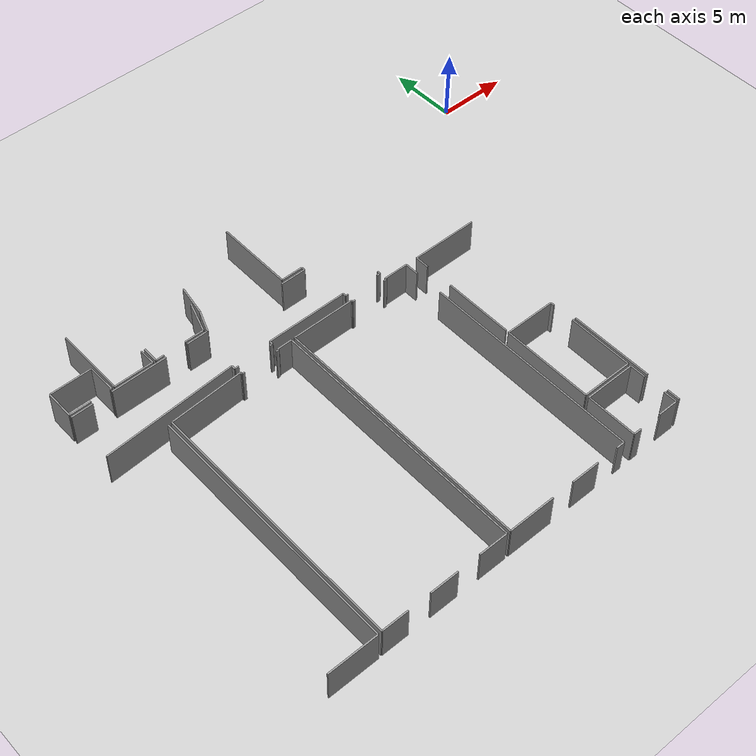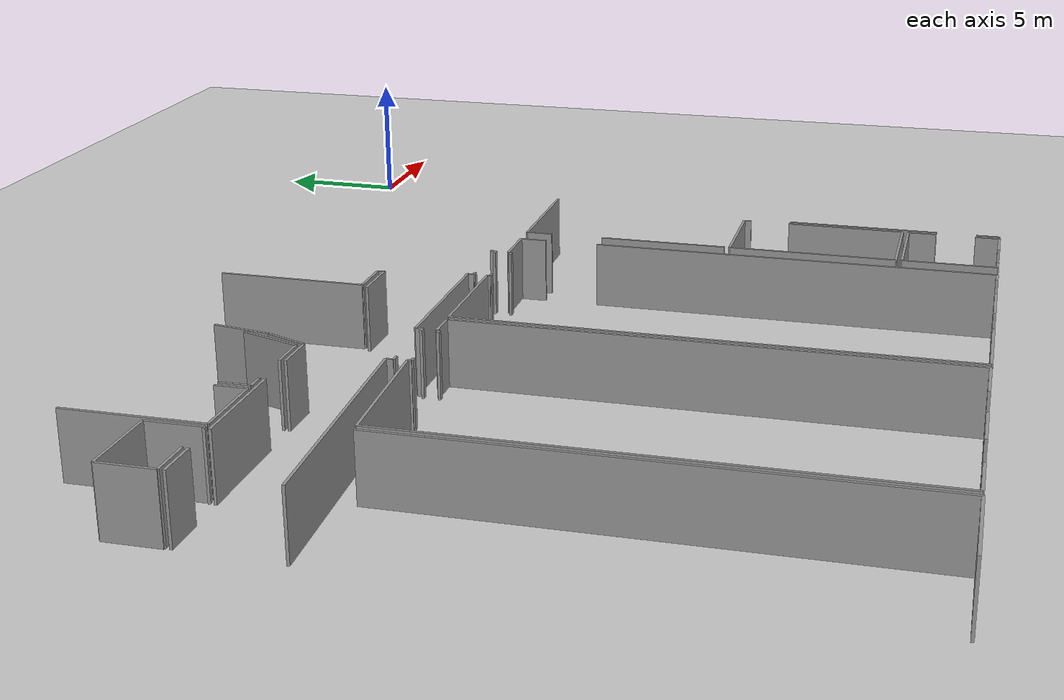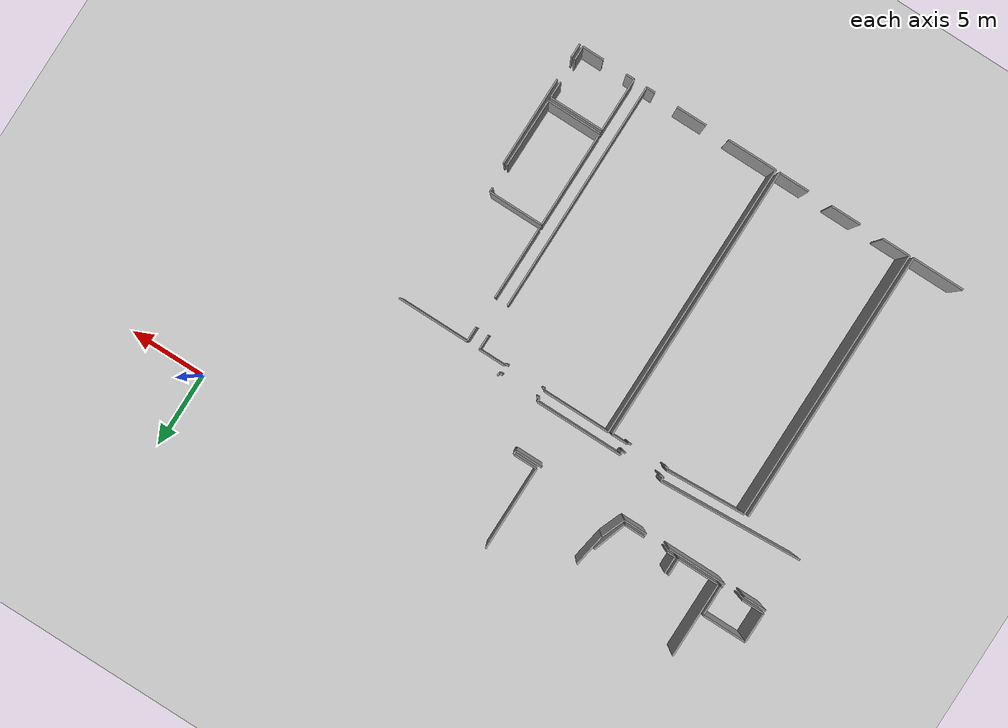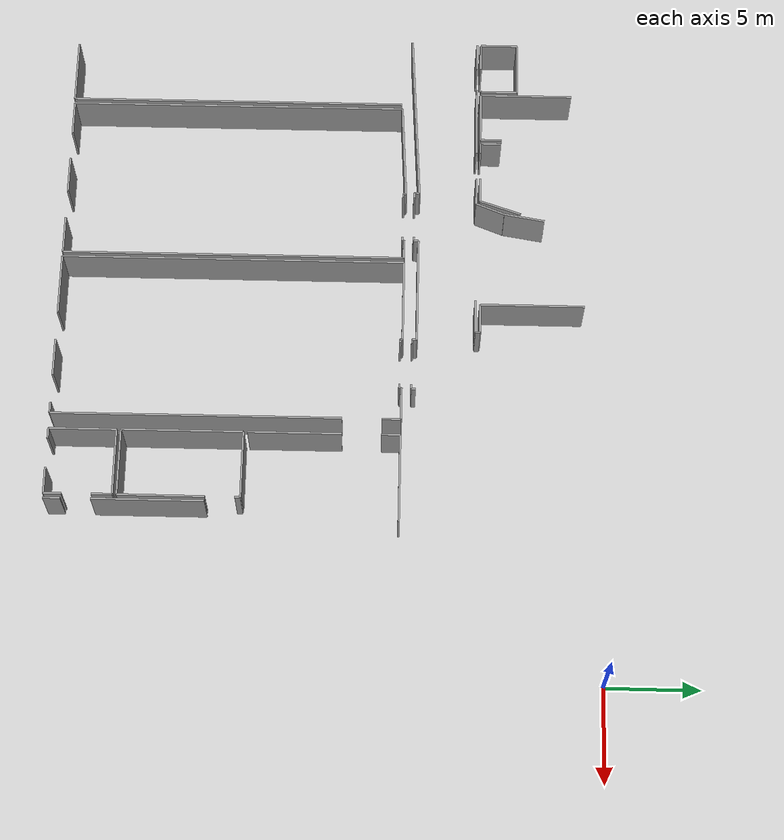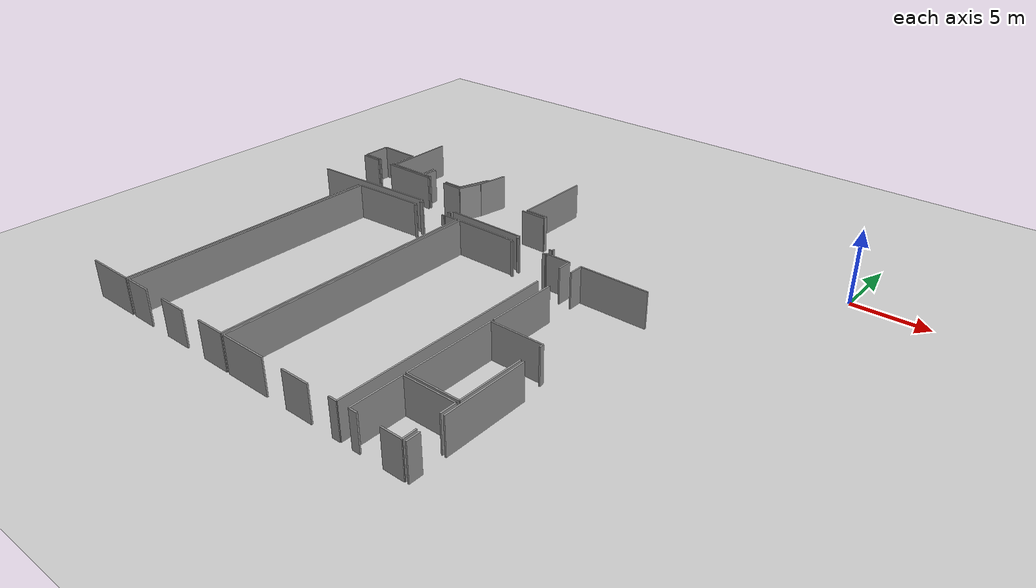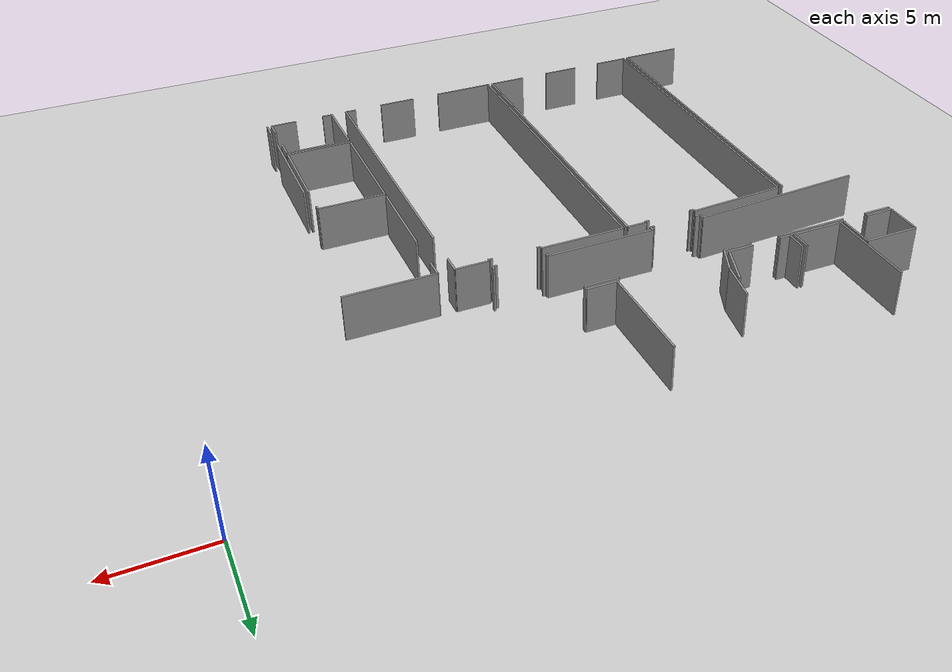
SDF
<sdf version="1.6">
 <world name="default">
  <model name="ground_plane">
   <static>1</static>
   <link name="link">
    <collision name="collision">
     <geometry><plane><normal>0 0 1</normal><size>100 100</size></plane></geometry>
     <surface><friction><ode><mu>100</mu><mu2>50</mu2></ode></friction></surface>
    </collision>
    <visual name="visual">
     <cast_shadows>0</cast_shadows>
     <geometry><plane><normal>0 0 1</normal><size>100 100</size></plane></geometry>
     <material>
      <script><uri>file://media/materials/scripts/gazebo.material</uri><name>Gazebo/Grey</name></script>
     </material>
    </visual>
   </link>
  </model>
  <model name="50041169">
   <static>1</static>
   <link name="Wall_67">
    <collision name="Wall_67_Collision">
     <geometry><box><size>1.64339123518 0.1 2.5</size></box></geometry>
     <pose>0.821695617591 0 1.25 0 0 0</pose>
    </collision>
    <visual name="Wall_67_Visual">
     <pose>0.821695617591 0 1.25 0 0 0</pose>
     <geometry><box><size>1.64339123518 0.1 2.5</size></box></geometry>
     <material>
      <script><uri>file://media/materials/scripts/gazebo.material</uri><name>Gazebo/Grey</name></script>
      <ambient>1 1 1 1</ambient>
     </material>
    </visual>
    <pose>45.3326647455 -35.5952547193 0 0 0 1.19434942848</pose>
   </link>
   <link name="Wall_68">
    <collision name="Wall_68_Collision">
     <geometry><box><size>2.19035003218 0.1 2.5</size></box></geometry>
     <pose>1.09517501609 0 1.25 0 0 0</pose>
    </collision>
    <visual name="Wall_68_Visual">
     <pose>1.09517501609 0 1.25 0 0 0</pose>
     <geometry><box><size>2.19035003218 0.1 2.5</size></box></geometry>
     <material>
      <script><uri>file://media/materials/scripts/gazebo.material</uri><name>Gazebo/Grey</name></script>
      <ambient>1 1 1 1</ambient>
     </material>
    </visual>
    <pose>45.9368057583 -34.0669391797 0 0 0 1.40344664676</pose>
   </link>
   <link name="Wall_109">
    <collision name="Wall_109_Collision">
     <geometry><box><size>0.217079456159 0.1 2.5</size></box></geometry>
     <pose>0.108539728079 0 1.25 0 0 0</pose>
    </collision>
    <visual name="Wall_109_Visual">
     <pose>0.108539728079 0 1.25 0 0 0</pose>
     <geometry><box><size>0.217079456159 0.1 2.5</size></box></geometry>
     <material>
      <script><uri>file://media/materials/scripts/gazebo.material</uri><name>Gazebo/Grey</name></script>
      <ambient>1 1 1 1</ambient>
     </material>
    </visual>
    <pose>56.2456679319 -38.7128203826 0 0 0 -1.57079632679</pose>
   </link>
   <link name="Wall_110">
    <collision name="Wall_110_Collision">
     <geometry><box><size>0.246785065949 0.1 2.5</size></box></geometry>
     <pose>0.123392532974 0 1.25 0 0 0</pose>
    </collision>
    <visual name="Wall_110_Visual">
     <pose>0.123392532974 0 1.25 0 0 0</pose>
     <geometry><box><size>0.246785065949 0.1 2.5</size></box></geometry>
     <material>
      <script><uri>file://media/materials/scripts/gazebo.material</uri><name>Gazebo/Grey</name></script>
      <ambient>1 1 1 1</ambient>
     </material>
    </visual>
    <pose>56.2456679319 -38.9298998388 0 0 0 3.14159265359</pose>
   </link>
   <link name="Wall_111">
    <collision name="Wall_111_Collision">
     <geometry><box><size>0.211112944791 0.1 2.5</size></box></geometry>
     <pose>0.105556472395 0 1.25 0 0 0</pose>
    </collision>
    <visual name="Wall_111_Visual">
     <pose>0.105556472395 0 1.25 0 0 0</pose>
     <geometry><box><size>0.211112944791 0.1 2.5</size></box></geometry>
     <material>
      <script><uri>file://media/materials/scripts/gazebo.material</uri><name>Gazebo/Grey</name></script>
      <ambient>1 1 1 1</ambient>
     </material>
    </visual>
    <pose>53.6352557348 -38.9298998388 0 0 0 3.14159265359</pose>
   </link>
   <link name="Wall_112">
    <collision name="Wall_112_Collision">
     <geometry><box><size>0.236248460767 0.1 2.5</size></box></geometry>
     <pose>0.118124230384 0 1.25 0 0 0</pose>
    </collision>
    <visual name="Wall_112_Visual">
     <pose>0.118124230384 0 1.25 0 0 0</pose>
     <geometry><box><size>0.236248460767 0.1 2.5</size></box></geometry>
     <material>
      <script><uri>file://media/materials/scripts/gazebo.material</uri><name>Gazebo/Grey</name></script>
      <ambient>1 1 1 1</ambient>
     </material>
    </visual>
    <pose>53.42414279 -38.9298998388 0 0 0 1.57079632679</pose>
   </link>
   <link name="Wall_113">
    <collision name="Wall_113_Collision">
     <geometry><box><size>5.79779873815 0.1 2.5</size></box></geometry>
     <pose>2.89889936907 0 1.25 0 0 0</pose>
    </collision>
    <visual name="Wall_113_Visual">
     <pose>2.89889936907 0 1.25 0 0 0</pose>
     <geometry><box><size>5.79779873815 0.1 2.5</size></box></geometry>
     <material>
      <script><uri>file://media/materials/scripts/gazebo.material</uri><name>Gazebo/Grey</name></script>
      <ambient>1 1 1 1</ambient>
     </material>
    </visual>
    <pose>53.42414279 -38.693651378 0 0 0 3.14159265359</pose>
   </link>
   <link name="Wall_114">
    <collision name="Wall_114_Collision">
     <geometry><box><size>0.259225876887 0.1 2.5</size></box></geometry>
     <pose>0.129612938443 0 1.25 0 0 0</pose>
    </collision>
    <visual name="Wall_114_Visual">
     <pose>0.129612938443 0 1.25 0 0 0</pose>
     <geometry><box><size>0.259225876887 0.1 2.5</size></box></geometry>
     <material>
      <script><uri>file://media/materials/scripts/gazebo.material</uri><name>Gazebo/Grey</name></script>
      <ambient>1 1 1 1</ambient>
     </material>
    </visual>
    <pose>47.6263440519 -38.693651378 0 0 0 -1.57079632679</pose>
   </link>
   <link name="Wall_115">
    <collision name="Wall_115_Collision">
     <geometry><box><size>0.22088786767 0.1 2.5</size></box></geometry>
     <pose>0.110443933835 0 1.25 0 0 0</pose>
    </collision>
    <visual name="Wall_115_Visual">
     <pose>0.110443933835 0 1.25 0 0 0</pose>
     <geometry><box><size>0.22088786767 0.1 2.5</size></box></geometry>
     <material>
      <script><uri>file://media/materials/scripts/gazebo.material</uri><name>Gazebo/Grey</name></script>
      <ambient>1 1 1 1</ambient>
     </material>
    </visual>
    <pose>47.6263440519 -38.9528772549 0 0 0 3.14159265359</pose>
   </link>
   <link name="Wall_116">
    <collision name="Wall_116_Collision">
     <geometry><box><size>0.287027280921 0.1 2.5</size></box></geometry>
     <pose>0.143513640461 0 1.25 0 0 0</pose>
    </collision>
    <visual name="Wall_116_Visual">
     <pose>0.143513640461 0 1.25 0 0 0</pose>
     <geometry><box><size>0.287027280921 0.1 2.5</size></box></geometry>
     <material>
      <script><uri>file://media/materials/scripts/gazebo.material</uri><name>Gazebo/Grey</name></script>
      <ambient>1 1 1 1</ambient>
     </material>
    </visual>
    <pose>45.0456374646 -38.9528772549 0 0 0 3.14159265359</pose>
   </link>
   <link name="Wall_117">
    <collision name="Wall_117_Collision">
     <geometry><box><size>0.271666687824 0.1 2.5</size></box></geometry>
     <pose>0.135833343912 0 1.25 0 0 0</pose>
    </collision>
    <visual name="Wall_117_Visual">
     <pose>0.135833343912 0 1.25 0 0 0</pose>
     <geometry><box><size>0.271666687824 0.1 2.5</size></box></geometry>
     <material>
      <script><uri>file://media/materials/scripts/gazebo.material</uri><name>Gazebo/Grey</name></script>
      <ambient>1 1 1 1</ambient>
     </material>
    </visual>
    <pose>44.7586101837 -38.9528772549 0 0 0 1.57079632679</pose>
   </link>
   <link name="Wall_118">
    <collision name="Wall_118_Collision">
     <geometry><box><size>9.41732799606 0.1 2.5</size></box></geometry>
     <pose>4.70866399803 0 1.25 0 0 0</pose>
    </collision>
    <visual name="Wall_118_Visual">
     <pose>4.70866399803 0 1.25 0 0 0</pose>
     <geometry><box><size>9.41732799606 0.1 2.5</size></box></geometry>
     <material>
      <script><uri>file://media/materials/scripts/gazebo.material</uri><name>Gazebo/Grey</name></script>
      <ambient>1 1 1 1</ambient>
     </material>
    </visual>
    <pose>44.7586101837 -38.6812105671 0 0 0 -3.08660635336</pose>
   </link>
   <link name="Wall_132">
    <collision name="Wall_132_Collision">
     <geometry><box><size>1.50965432318 0.1 2.5</size></box></geometry>
     <pose>0.754827161591 0 1.25 0 0 0</pose>
    </collision>
    <visual name="Wall_132_Visual">
     <pose>0.754827161591 0 1.25 0 0 0</pose>
     <geometry><box><size>1.50965432318 0.1 2.5</size></box></geometry>
     <material>
      <script><uri>file://media/materials/scripts/gazebo.material</uri><name>Gazebo/Grey</name></script>
      <ambient>1 1 1 1</ambient>
     </material>
    </visual>
    <pose>35.4436164676 -35.5910654666 0 0 0 0.0</pose>
   </link>
   <link name="Wall_133">
    <collision name="Wall_133_Collision">
     <geometry><box><size>3.91860155129 0.1 2.5</size></box></geometry>
     <pose>1.95930077565 0 1.25 0 0 0</pose>
    </collision>
    <visual name="Wall_133_Visual">
     <pose>1.95930077565 0 1.25 0 0 0</pose>
     <geometry><box><size>3.91860155129 0.1 2.5</size></box></geometry>
     <material>
      <script><uri>file://media/materials/scripts/gazebo.material</uri><name>Gazebo/Grey</name></script>
      <ambient>1 1 1 1</ambient>
     </material>
    </visual>
    <pose>38.3046221421 -35.5910654666 0 0 0 0.0</pose>
   </link>
   <link name="Wall_134">
    <collision name="Wall_134_Collision">
     <geometry><box><size>1.52742691024 0.1 2.5</size></box></geometry>
     <pose>0.763713455118 0 1.25 0 0 0</pose>
    </collision>
    <visual name="Wall_134_Visual">
     <pose>0.763713455118 0 1.25 0 0 0</pose>
     <geometry><box><size>1.52742691024 0.1 2.5</size></box></geometry>
     <material>
      <script><uri>file://media/materials/scripts/gazebo.material</uri><name>Gazebo/Grey</name></script>
      <ambient>1 1 1 1</ambient>
     </material>
    </visual>
    <pose>43.8051108882 -35.5910654666 0 0 0 0.0</pose>
   </link>
   <link name="Wall_135">
    <collision name="Wall_135_Collision">
     <geometry><box><size>1.82295964353 0.1 2.5</size></box></geometry>
     <pose>0.911479821766 0 1.25 0 0 0</pose>
    </collision>
    <visual name="Wall_135_Visual">
     <pose>0.911479821766 0 1.25 0 0 0</pose>
     <geometry><box><size>1.82295964353 0.1 2.5</size></box></geometry>
     <material>
      <script><uri>file://media/materials/scripts/gazebo.material</uri><name>Gazebo/Grey</name></script>
      <ambient>1 1 1 1</ambient>
     </material>
    </visual>
    <pose>51.1119292143 -35.5910654666 0 0 0 0.0</pose>
   </link>
   <link name="Wall_143">
    <collision name="Wall_143_Collision">
     <geometry><box><size>0.104223528366 0.1 2.5</size></box></geometry>
     <pose>0.0521117641832 0 1.25 0 0 0</pose>
    </collision>
    <visual name="Wall_143_Visual">
     <pose>0.0521117641832 0 1.25 0 0 0</pose>
     <geometry><box><size>0.104223528366 0.1 2.5</size></box></geometry>
     <material>
      <script><uri>file://media/materials/scripts/gazebo.material</uri><name>Gazebo/Grey</name></script>
      <ambient>1 1 1 1</ambient>
     </material>
    </visual>
    <pose>38.425348787 -35.3798255748 0 0 0 3.14159265359</pose>
   </link>
   <link name="Wall_144">
    <collision name="Wall_144_Collision">
     <geometry><box><size>1.50838485268 0.1 2.5</size></box></geometry>
     <pose>0.754192426339 0 1.25 0 0 0</pose>
    </collision>
    <visual name="Wall_144_Visual">
     <pose>0.754192426339 0 1.25 0 0 0</pose>
     <geometry><box><size>1.50838485268 0.1 2.5</size></box></geometry>
     <material>
      <script><uri>file://media/materials/scripts/gazebo.material</uri><name>Gazebo/Grey</name></script>
      <ambient>1 1 1 1</ambient>
     </material>
    </visual>
    <pose>36.9775176774 -35.3798255748 0 0 0 3.14159265359</pose>
   </link>
   <link name="Wall_145">
    <collision name="Wall_145_Collision">
     <geometry><box><size>2.00030467292 0.1 2.5</size></box></geometry>
     <pose>1.00015233646 0 1.25 0 0 0</pose>
    </collision>
    <visual name="Wall_145_Visual">
     <pose>1.00015233646 0 1.25 0 0 0</pose>
     <geometry><box><size>2.00030467292 0.1 2.5</size></box></geometry>
     <material>
      <script><uri>file://media/materials/scripts/gazebo.material</uri><name>Gazebo/Grey</name></script>
      <ambient>1 1 1 1</ambient>
     </material>
    </visual>
    <pose>35.4691328247 -35.3798255748 0 0 0 1.57079632679</pose>
   </link>
   <link name="Wall_146">
    <collision name="Wall_146_Collision">
     <geometry><box><size>2.93844337527 0.1 2.5</size></box></geometry>
     <pose>1.46922168763 0 1.25 0 0 0</pose>
    </collision>
    <visual name="Wall_146_Visual">
     <pose>1.46922168763 0 1.25 0 0 0</pose>
     <geometry><box><size>2.93844337527 0.1 2.5</size></box></geometry>
     <material>
      <script><uri>file://media/materials/scripts/gazebo.material</uri><name>Gazebo/Grey</name></script>
      <ambient>1 1 1 1</ambient>
     </material>
    </visual>
    <pose>35.4691328247 -33.3795209018 0 0 0 0.0</pose>
   </link>
   <link name="Wall_147">
    <collision name="Wall_147_Collision">
     <geometry><box><size>2.00038362555 0.1 2.5</size></box></geometry>
     <pose>1.00019181277 0 1.25 0 0 0</pose>
    </collision>
    <visual name="Wall_147_Visual">
     <pose>1.00019181277 0 1.25 0 0 0</pose>
     <geometry><box><size>2.00038362555 0.1 2.5</size></box></geometry>
     <material>
      <script><uri>file://media/materials/scripts/gazebo.material</uri><name>Gazebo/Grey</name></script>
      <ambient>1 1 1 1</ambient>
     </material>
    </visual>
    <pose>38.4075762 -33.3795209018 0 0 0 -1.56191162056</pose>
   </link>
   <link name="Wall_148">
    <collision name="Wall_148_Collision">
     <geometry><box><size>1.37915275539 0.1 2.5</size></box></geometry>
     <pose>0.689576377693 0 1.25 0 0 0</pose>
    </collision>
    <visual name="Wall_148_Visual">
     <pose>0.689576377693 0 1.25 0 0 0</pose>
     <geometry><box><size>1.37915275539 0.1 2.5</size></box></geometry>
     <material>
      <script><uri>file://media/materials/scripts/gazebo.material</uri><name>Gazebo/Grey</name></script>
      <ambient>1 1 1 1</ambient>
     </material>
    </visual>
    <pose>45.1769007147 -35.3805872571 0 0 0 3.14159265359</pose>
   </link>
   <link name="Wall_149">
    <collision name="Wall_149_Collision">
     <geometry><box><size>0.592461884148 0.1 2.5</size></box></geometry>
     <pose>0.296230942074 0 1.25 0 0 0</pose>
    </collision>
    <visual name="Wall_149_Visual">
     <pose>0.296230942074 0 1.25 0 0 0</pose>
     <geometry><box><size>0.592461884148 0.1 2.5</size></box></geometry>
     <material>
      <script><uri>file://media/materials/scripts/gazebo.material</uri><name>Gazebo/Grey</name></script>
      <ambient>1 1 1 1</ambient>
     </material>
    </visual>
    <pose>42.2417579628 -35.3805872571 0 0 0 3.14159265359</pose>
   </link>
   <link name="Wall_150">
    <collision name="Wall_150_Collision">
     <geometry><box><size>1.12500476051 0.1 2.5</size></box></geometry>
     <pose>0.562502380257 0 1.25 0 0 0</pose>
    </collision>
    <visual name="Wall_150_Visual">
     <pose>0.562502380257 0 1.25 0 0 0</pose>
     <geometry><box><size>1.12500476051 0.1 2.5</size></box></geometry>
     <material>
      <script><uri>file://media/materials/scripts/gazebo.material</uri><name>Gazebo/Grey</name></script>
      <ambient>1 1 1 1</ambient>
     </material>
    </visual>
    <pose>41.6492960786 -35.3805872571 0 0 0 1.57079632679</pose>
   </link>
   <link name="Wall_155">
    <collision name="Wall_155_Collision">
     <geometry><box><size>2.31127269089 0.1 2.5</size></box></geometry>
     <pose>1.15563634545 0 1.25 0 0 0</pose>
    </collision>
    <visual name="Wall_155_Visual">
     <pose>1.15563634545 0 1.25 0 0 0</pose>
     <geometry><box><size>2.31127269089 0.1 2.5</size></box></geometry>
     <material>
      <script><uri>file://media/materials/scripts/gazebo.material</uri><name>Gazebo/Grey</name></script>
      <ambient>1 1 1 1</ambient>
     </material>
    </visual>
    <pose>45.9147169716 -33.1902428497 0 0 0 -1.89570801979</pose>
   </link>
   <link name="Wall_156">
    <collision name="Wall_156_Collision">
     <geometry><box><size>2.78179071509 0.1 2.5</size></box></geometry>
     <pose>1.39089535755 0 1.25 0 0 0</pose>
    </collision>
    <visual name="Wall_156_Visual">
     <pose>1.39089535755 0 1.25 0 0 0</pose>
     <geometry><box><size>2.78179071509 0.1 2.5</size></box></geometry>
     <material>
      <script><uri>file://media/materials/scripts/gazebo.material</uri><name>Gazebo/Grey</name></script>
      <ambient>1 1 1 1</ambient>
     </material>
    </visual>
    <pose>41.4138093001 -35.3805872571 0 0 0 3.14159265359</pose>
   </link>
   <link name="Wall_157">
    <collision name="Wall_157_Collision">
     <geometry><box><size>4.98965381539 0.1 2.5</size></box></geometry>
     <pose>2.4948269077 0 1.25 0 0 0</pose>
    </collision>
    <visual name="Wall_157_Visual">
     <pose>2.4948269077 0 1.25 0 0 0</pose>
     <geometry><box><size>4.98965381539 0.1 2.5</size></box></geometry>
     <material>
      <script><uri>file://media/materials/scripts/gazebo.material</uri><name>Gazebo/Grey</name></script>
      <ambient>1 1 1 1</ambient>
     </material>
    </visual>
    <pose>38.632018585 -35.3805872571 0 0 0 1.57079632679</pose>
   </link>
   <link name="Wall_160">
    <collision name="Wall_160_Collision">
     <geometry><box><size>1.14420351905 0.1 2.5</size></box></geometry>
     <pose>0.572101759526 0 1.25 0 0 0</pose>
    </collision>
    <visual name="Wall_160_Visual">
     <pose>0.572101759526 0 1.25 0 0 0</pose>
     <geometry><box><size>1.14420351905 0.1 2.5</size></box></geometry>
     <material>
      <script><uri>file://media/materials/scripts/gazebo.material</uri><name>Gazebo/Grey</name></script>
      <ambient>1 1 1 1</ambient>
     </material>
    </visual>
    <pose>41.4055577419 -34.2364134919 0 0 0 -1.56358464665</pose>
   </link>
   <link name="Wall_177">
    <collision name="Wall_177_Collision">
     <geometry><box><size>3.46565447552 0.1 2.5</size></box></geometry>
     <pose>1.73282723776 0 1.25 0 0 0</pose>
    </collision>
    <visual name="Wall_177_Visual">
     <pose>1.73282723776 0 1.25 0 0 0</pose>
     <geometry><box><size>3.46565447552 0.1 2.5</size></box></geometry>
     <material>
      <script><uri>file://media/materials/scripts/gazebo.material</uri><name>Gazebo/Grey</name></script>
      <ambient>1 1 1 1</ambient>
     </material>
    </visual>
    <pose>39.3064882637 -57.7982938316 0 0 0 3.14159265359</pose>
   </link>
   <link name="Wall_183">
    <collision name="Wall_183_Collision">
     <geometry><box><size>18.0819580857 0.1 2.5</size></box></geometry>
     <pose>9.04097904284 0 1.25 0 0 0</pose>
    </collision>
    <visual name="Wall_183_Visual">
     <pose>9.04097904284 0 1.25 0 0 0</pose>
     <geometry><box><size>18.0819580857 0.1 2.5</size></box></geometry>
     <material>
      <script><uri>file://media/materials/scripts/gazebo.material</uri><name>Gazebo/Grey</name></script>
      <ambient>1 1 1 1</ambient>
     </material>
    </visual>
    <pose>39.3002678583 -39.7163368159 0 0 0 -1.57045231507</pose>
   </link>
   <link name="Wall_184">
    <collision name="Wall_184_Collision">
     <geometry><box><size>2.05425716933 0.1 2.5</size></box></geometry>
     <pose>1.02712858467 0 1.25 0 0 0</pose>
    </collision>
    <visual name="Wall_184_Visual">
     <pose>1.02712858467 0 1.25 0 0 0</pose>
     <geometry><box><size>2.05425716933 0.1 2.5</size></box></geometry>
     <material>
      <script><uri>file://media/materials/scripts/gazebo.material</uri><name>Gazebo/Grey</name></script>
      <ambient>1 1 1 1</ambient>
     </material>
    </visual>
    <pose>48.68216267 -57.776458939 0 0 0 3.14159265359</pose>
   </link>
   <link name="Wall_185">
    <collision name="Wall_185_Collision">
     <geometry><box><size>2.01338021911 0.1 2.5</size></box></geometry>
     <pose>1.00669010956 0 1.25 0 0 0</pose>
    </collision>
    <visual name="Wall_185_Visual">
     <pose>1.00669010956 0 1.25 0 0 0</pose>
     <geometry><box><size>2.01338021911 0.1 2.5</size></box></geometry>
     <material>
      <script><uri>file://media/materials/scripts/gazebo.material</uri><name>Gazebo/Grey</name></script>
      <ambient>1 1 1 1</ambient>
     </material>
    </visual>
    <pose>45.0373859063 -57.776458939 0 0 0 3.14159265359</pose>
   </link>
   <link name="Wall_186">
    <collision name="Wall_186_Collision">
     <geometry><box><size>1.86827974052 0.1 2.5</size></box></geometry>
     <pose>0.93413987026 0 1.25 0 0 0</pose>
    </collision>
    <visual name="Wall_186_Visual">
     <pose>0.93413987026 0 1.25 0 0 0</pose>
     <geometry><box><size>1.86827974052 0.1 2.5</size></box></geometry>
     <material>
      <script><uri>file://media/materials/scripts/gazebo.material</uri><name>Gazebo/Grey</name></script>
      <ambient>1 1 1 1</ambient>
     </material>
    </visual>
    <pose>41.446180798 -57.776458939 0 0 0 3.14159265359</pose>
   </link>
   <link name="Wall_187">
    <collision name="Wall_187_Collision">
     <geometry><box><size>18.0844959567 0.1 2.5</size></box></geometry>
     <pose>9.04224797837 0 1.25 0 0 0</pose>
    </collision>
    <visual name="Wall_187_Visual">
     <pose>9.04224797837 0 1.25 0 0 0</pose>
     <geometry><box><size>18.0844959567 0.1 2.5</size></box></geometry>
     <material>
      <script><uri>file://media/materials/scripts/gazebo.material</uri><name>Gazebo/Grey</name></script>
      <ambient>1 1 1 1</ambient>
     </material>
    </visual>
    <pose>39.5779010575 -57.776458939 0 0 0 1.57079632679</pose>
   </link>
   <link name="Wall_188">
    <collision name="Wall_188_Collision">
     <geometry><box><size>5.25294267283 0.1 2.5</size></box></geometry>
     <pose>2.62647133642 0 1.25 0 0 0</pose>
    </collision>
    <visual name="Wall_188_Visual">
     <pose>2.62647133642 0 1.25 0 0 0</pose>
     <geometry><box><size>5.25294267283 0.1 2.5</size></box></geometry>
     <material>
      <script><uri>file://media/materials/scripts/gazebo.material</uri><name>Gazebo/Grey</name></script>
      <ambient>1 1 1 1</ambient>
     </material>
    </visual>
    <pose>39.5779010575 -39.6919629822 0 0 0 0.0534099496427</pose>
   </link>
   <link name="Wall_189">
    <collision name="Wall_189_Collision">
     <geometry><box><size>0.14179985528 0.1 2.5</size></box></geometry>
     <pose>0.0708999276402 0 1.25 0 0 0</pose>
    </collision>
    <visual name="Wall_189_Visual">
     <pose>0.0708999276402 0 1.25 0 0 0</pose>
     <geometry><box><size>0.14179985528 0.1 2.5</size></box></geometry>
     <material>
      <script><uri>file://media/materials/scripts/gazebo.material</uri><name>Gazebo/Grey</name></script>
      <ambient>1 1 1 1</ambient>
     </material>
    </visual>
    <pose>44.8233531794 -39.4115369479 0 0 0 -1.57079632679</pose>
   </link>
   <link name="Wall_190">
    <collision name="Wall_190_Collision">
     <geometry><box><size>0.200322445508 0.1 2.5</size></box></geometry>
     <pose>0.100161222754 0 1.25 0 0 0</pose>
    </collision>
    <visual name="Wall_190_Visual">
     <pose>0.100161222754 0 1.25 0 0 0</pose>
     <geometry><box><size>0.200322445508 0.1 2.5</size></box></geometry>
     <material>
      <script><uri>file://media/materials/scripts/gazebo.material</uri><name>Gazebo/Grey</name></script>
      <ambient>1 1 1 1</ambient>
     </material>
    </visual>
    <pose>44.8233531794 -39.5533368032 0 0 0 0.0</pose>
   </link>
   <link name="Wall_191">
    <collision name="Wall_191_Collision">
     <geometry><box><size>0.205273380473 0.1 2.5</size></box></geometry>
     <pose>0.102636690237 0 1.25 0 0 0</pose>
    </collision>
    <visual name="Wall_191_Visual">
     <pose>0.102636690237 0 1.25 0 0 0</pose>
     <geometry><box><size>0.205273380473 0.1 2.5</size></box></geometry>
     <material>
      <script><uri>file://media/materials/scripts/gazebo.material</uri><name>Gazebo/Grey</name></script>
      <ambient>1 1 1 1</ambient>
     </material>
    </visual>
    <pose>47.4036789255 -39.5513056504 0 0 0 0.0</pose>
   </link>
   <link name="Wall_192">
    <collision name="Wall_192_Collision">
     <geometry><box><size>0.0906401939751 0.1 2.5</size></box></geometry>
     <pose>0.0453200969875 0 1.25 0 0 0</pose>
    </collision>
    <visual name="Wall_192_Visual">
     <pose>0.0453200969875 0 1.25 0 0 0</pose>
     <geometry><box><size>0.0906401939751 0.1 2.5</size></box></geometry>
     <material>
      <script><uri>file://media/materials/scripts/gazebo.material</uri><name>Gazebo/Grey</name></script>
      <ambient>1 1 1 1</ambient>
     </material>
    </visual>
    <pose>47.608952306 -39.5513056504 0 0 0 1.57079632679</pose>
   </link>
   <link name="Wall_193">
    <collision name="Wall_193_Collision">
     <geometry><box><size>1.06419712338 0.1 2.5</size></box></geometry>
     <pose>0.53209856169 0 1.25 0 0 0</pose>
    </collision>
    <visual name="Wall_193_Visual">
     <pose>0.53209856169 0 1.25 0 0 0</pose>
     <geometry><box><size>1.06419712338 0.1 2.5</size></box></geometry>
     <material>
      <script><uri>file://media/materials/scripts/gazebo.material</uri><name>Gazebo/Grey</name></script>
      <ambient>1 1 1 1</ambient>
     </material>
    </visual>
    <pose>47.608952306 -39.4606654564 0 0 0 0.0</pose>
   </link>
   <link name="Wall_194">
    <collision name="Wall_194_Collision">
     <geometry><box><size>18.3157957003 0.1 2.5</size></box></geometry>
     <pose>9.15789785013 0 1.25 0 0 0</pose>
    </collision>
    <visual name="Wall_194_Visual">
     <pose>9.15789785013 0 1.25 0 0 0</pose>
     <geometry><box><size>18.3157957003 0.1 2.5</size></box></geometry>
     <material>
      <script><uri>file://media/materials/scripts/gazebo.material</uri><name>Gazebo/Grey</name></script>
      <ambient>1 1 1 1</ambient>
     </material>
    </visual>
    <pose>48.6731494294 -39.4606654564 0 0 0 -1.57030422473</pose>
   </link>
   <link name="Wall_195">
    <collision name="Wall_195_Collision">
     <geometry><box><size>0.588145684435 0.1 2.5</size></box></geometry>
     <pose>0.294072842218 0 1.25 0 0 0</pose>
    </collision>
    <visual name="Wall_195_Visual">
     <pose>0.294072842218 0 1.25 0 0 0</pose>
     <geometry><box><size>0.588145684435 0.1 2.5</size></box></geometry>
     <material>
      <script><uri>file://media/materials/scripts/gazebo.material</uri><name>Gazebo/Grey</name></script>
      <ambient>1 1 1 1</ambient>
     </material>
    </visual>
    <pose>57.9948713392 -57.7868685971 0 0 0 3.14159265359</pose>
   </link>
   <link name="Wall_196">
    <collision name="Wall_196_Collision">
     <geometry><box><size>2.02353598314 0.1 2.5</size></box></geometry>
     <pose>1.01176799157 0 1.25 0 0 0</pose>
    </collision>
    <visual name="Wall_196_Visual">
     <pose>1.01176799157 0 1.25 0 0 0</pose>
     <geometry><box><size>2.02353598314 0.1 2.5</size></box></geometry>
     <material>
      <script><uri>file://media/materials/scripts/gazebo.material</uri><name>Gazebo/Grey</name></script>
      <ambient>1 1 1 1</ambient>
     </material>
    </visual>
    <pose>55.8461655643 -57.7868685971 0 0 0 3.14159265359</pose>
   </link>
   <link name="Wall_197">
    <collision name="Wall_197_Collision">
     <geometry><box><size>3.31204854455 0.1 2.5</size></box></geometry>
     <pose>1.65602427228 0 1.25 0 0 0</pose>
    </collision>
    <visual name="Wall_197_Visual">
     <pose>1.65602427228 0 1.25 0 0 0</pose>
     <geometry><box><size>3.31204854455 0.1 2.5</size></box></geometry>
     <material>
      <script><uri>file://media/materials/scripts/gazebo.material</uri><name>Gazebo/Grey</name></script>
      <ambient>1 1 1 1</ambient>
     </material>
    </visual>
    <pose>52.2477244741 -57.7868685971 0 0 0 3.14159265359</pose>
   </link>
   <link name="Wall_198">
    <collision name="Wall_198_Collision">
     <geometry><box><size>18.3416906808 0.1 2.5</size></box></geometry>
     <pose>9.17084534041 0 1.25 0 0 0</pose>
    </collision>
    <visual name="Wall_198_Visual">
     <pose>9.17084534041 0 1.25 0 0 0</pose>
     <geometry><box><size>18.3416906808 0.1 2.5</size></box></geometry>
     <material>
      <script><uri>file://media/materials/scripts/gazebo.material</uri><name>Gazebo/Grey</name></script>
      <ambient>1 1 1 1</ambient>
     </material>
    </visual>
    <pose>48.9356759296 -57.7868685971 0 0 0 1.57079632679</pose>
   </link>
   <link name="Wall_199">
    <collision name="Wall_199_Collision">
     <geometry><box><size>4.50039988321 0.1 2.5</size></box></geometry>
     <pose>2.2501999416 0 1.25 0 0 0</pose>
    </collision>
    <visual name="Wall_199_Visual">
     <pose>2.2501999416 0 1.25 0 0 0</pose>
     <geometry><box><size>4.50039988321 0.1 2.5</size></box></geometry>
     <material>
      <script><uri>file://media/materials/scripts/gazebo.material</uri><name>Gazebo/Grey</name></script>
      <ambient>1 1 1 1</ambient>
     </material>
    </visual>
    <pose>48.9356759296 -39.4451779163 0 0 0 0.0</pose>
   </link>
   <link name="Wall_200">
    <collision name="Wall_200_Collision">
     <geometry><box><size>0.120472750816 0.1 2.5</size></box></geometry>
     <pose>0.0602363754078 0 1.25 0 0 0</pose>
    </collision>
    <visual name="Wall_200_Visual">
     <pose>0.0602363754078 0 1.25 0 0 0</pose>
     <geometry><box><size>0.120472750816 0.1 2.5</size></box></geometry>
     <material>
      <script><uri>file://media/materials/scripts/gazebo.material</uri><name>Gazebo/Grey</name></script>
      <ambient>1 1 1 1</ambient>
     </material>
    </visual>
    <pose>53.4360758128 -39.4451779163 0 0 0 -1.57079632679</pose>
   </link>
   <link name="Wall_201">
    <collision name="Wall_201_Collision">
     <geometry><box><size>0.190801416729 0.1 2.5</size></box></geometry>
     <pose>0.0954007083645 0 1.25 0 0 0</pose>
    </collision>
    <visual name="Wall_201_Visual">
     <pose>0.0954007083645 0 1.25 0 0 0</pose>
     <geometry><box><size>0.190801416729 0.1 2.5</size></box></geometry>
     <material>
      <script><uri>file://media/materials/scripts/gazebo.material</uri><name>Gazebo/Grey</name></script>
      <ambient>1 1 1 1</ambient>
     </material>
    </visual>
    <pose>53.4360758128 -39.5656506671 0 0 0 0.0</pose>
   </link>
   <link name="Wall_202">
    <collision name="Wall_202_Collision">
     <geometry><box><size>0.212890203496 0.1 2.5</size></box></geometry>
     <pose>0.106445101748 0 1.25 0 0 0</pose>
    </collision>
    <visual name="Wall_202_Visual">
     <pose>0.106445101748 0 1.25 0 0 0</pose>
     <geometry><box><size>0.212890203496 0.1 2.5</size></box></geometry>
     <material>
      <script><uri>file://media/materials/scripts/gazebo.material</uri><name>Gazebo/Grey</name></script>
      <ambient>1 1 1 1</ambient>
     </material>
    </visual>
    <pose>55.9924085664 -39.5656506671 0 0 0 0.0</pose>
   </link>
   <link name="Wall_203">
    <collision name="Wall_203_Collision">
     <geometry><box><size>0.11526792175 0.1 2.5</size></box></geometry>
     <pose>0.0576339608749 0 1.25 0 0 0</pose>
    </collision>
    <visual name="Wall_203_Visual">
     <pose>0.0576339608749 0 1.25 0 0 0</pose>
     <geometry><box><size>0.11526792175 0.1 2.5</size></box></geometry>
     <material>
      <script><uri>file://media/materials/scripts/gazebo.material</uri><name>Gazebo/Grey</name></script>
      <ambient>1 1 1 1</ambient>
     </material>
    </visual>
    <pose>56.2052987699 -39.5656506671 0 0 0 1.57079632679</pose>
   </link>
   <link name="Wall_204">
    <collision name="Wall_204_Collision">
     <geometry><box><size>1.76824546482 0.1 2.5</size></box></geometry>
     <pose>0.884122732408 0 1.25 0 0 0</pose>
    </collision>
    <visual name="Wall_204_Visual">
     <pose>0.884122732408 0 1.25 0 0 0</pose>
     <geometry><box><size>1.76824546482 0.1 2.5</size></box></geometry>
     <material>
      <script><uri>file://media/materials/scripts/gazebo.material</uri><name>Gazebo/Grey</name></script>
      <ambient>1 1 1 1</ambient>
     </material>
    </visual>
    <pose>56.2052987699 -39.4503827454 0 0 0 0.0</pose>
   </link>
   <link name="Wall_205">
    <collision name="Wall_205_Collision">
     <geometry><box><size>1.00770568596 0.1 2.5</size></box></geometry>
     <pose>0.503852842979 0 1.25 0 0 0</pose>
    </collision>
    <visual name="Wall_205_Visual">
     <pose>0.503852842979 0 1.25 0 0 0</pose>
     <geometry><box><size>1.00770568596 0.1 2.5</size></box></geometry>
     <material>
      <script><uri>file://media/materials/scripts/gazebo.material</uri><name>Gazebo/Grey</name></script>
      <ambient>1 1 1 1</ambient>
     </material>
    </visual>
    <pose>57.9735442347 -39.4503827454 0 0 0 -1.57079632679</pose>
   </link>
   <link name="Wall_206">
    <collision name="Wall_206_Collision">
     <geometry><box><size>15.2703486369 0.1 2.5</size></box></geometry>
     <pose>7.63517431845 0 1.25 0 0 0</pose>
    </collision>
    <visual name="Wall_206_Visual">
     <pose>7.63517431845 0 1.25 0 0 0</pose>
     <geometry><box><size>15.2703486369 0.1 2.5</size></box></geometry>
     <material>
      <script><uri>file://media/materials/scripts/gazebo.material</uri><name>Gazebo/Grey</name></script>
      <ambient>1 1 1 1</ambient>
     </material>
    </visual>
    <pose>57.9735442347 -42.5165348533 0 0 0 -1.56939969127</pose>
   </link>
   <link name="Wall_237">
    <collision name="Wall_237_Collision">
     <geometry><box><size>0.255544412426 0.1 2.5</size></box></geometry>
     <pose>0.127772206213 0 1.25 0 0 0</pose>
    </collision>
    <visual name="Wall_237_Visual">
     <pose>0.127772206213 0 1.25 0 0 0</pose>
     <geometry><box><size>0.255544412426 0.1 2.5</size></box></geometry>
     <material>
      <script><uri>file://media/materials/scripts/gazebo.material</uri><name>Gazebo/Grey</name></script>
      <ambient>1 1 1 1</ambient>
     </material>
    </visual>
    <pose>52.9359044343 -35.5969050309 0 0 0 1.57079632679</pose>
   </link>
   <link name="Wall_238">
    <collision name="Wall_238_Collision">
     <geometry><box><size>1.60207177586 0.1 2.5</size></box></geometry>
     <pose>0.801035887931 0 1.25 0 0 0</pose>
    </collision>
    <visual name="Wall_238_Visual">
     <pose>0.801035887931 0 1.25 0 0 0</pose>
     <geometry><box><size>1.60207177586 0.1 2.5</size></box></geometry>
     <material>
      <script><uri>file://media/materials/scripts/gazebo.material</uri><name>Gazebo/Grey</name></script>
      <ambient>1 1 1 1</ambient>
     </material>
    </visual>
    <pose>52.9359044343 -35.3413606185 0 0 0 3.14159265359</pose>
   </link>
   <link name="Wall_239">
    <collision name="Wall_239_Collision">
     <geometry><box><size>5.54593579018 0.1 2.5</size></box></geometry>
     <pose>2.77296789509 0 1.25 0 0 0</pose>
    </collision>
    <visual name="Wall_239_Visual">
     <pose>2.77296789509 0 1.25 0 0 0</pose>
     <geometry><box><size>5.54593579018 0.1 2.5</size></box></geometry>
     <material>
      <script><uri>file://media/materials/scripts/gazebo.material</uri><name>Gazebo/Grey</name></script>
      <ambient>1 1 1 1</ambient>
     </material>
    </visual>
    <pose>51.3338326584 -35.3413606185 0 0 0 1.57079632679</pose>
   </link>
   <link name="Wall_360">
    <collision name="Wall_360_Collision">
     <geometry><box><size>0.908306145507 0.1 2.5</size></box></geometry>
     <pose>0.454153072753 0 1.25 0 0 0</pose>
    </collision>
    <visual name="Wall_360_Visual">
     <pose>0.454153072753 0 1.25 0 0 0</pose>
     <geometry><box><size>0.908306145507 0.1 2.5</size></box></geometry>
     <material>
      <script><uri>file://media/materials/scripts/gazebo.material</uri><name>Gazebo/Grey</name></script>
      <ambient>1 1 1 1</ambient>
     </material>
    </visual>
    <pose>62.6906427329 -57.7982938316 0 0 0 1.57079632679</pose>
   </link>
   <link name="Wall_361">
    <collision name="Wall_361_Collision">
     <geometry><box><size>5.86203394564 0.1 2.5</size></box></geometry>
     <pose>2.93101697282 0 1.25 0 0 0</pose>
    </collision>
    <visual name="Wall_361_Visual">
     <pose>2.93101697282 0 1.25 0 0 0</pose>
     <geometry><box><size>5.86203394564 0.1 2.5</size></box></geometry>
     <material>
      <script><uri>file://media/materials/scripts/gazebo.material</uri><name>Gazebo/Grey</name></script>
      <ambient>1 1 1 1</ambient>
     </material>
    </visual>
    <pose>62.6906427329 -55.3309509604 0 0 0 1.57079632679</pose>
   </link>
   <link name="Wall_374">
    <collision name="Wall_374_Collision">
     <geometry><box><size>4.90066393307 0.1 2.5</size></box></geometry>
     <pose>2.45033196654 0 1.25 0 0 0</pose>
    </collision>
    <visual name="Wall_374_Visual">
     <pose>2.45033196654 0 1.25 0 0 0</pose>
     <geometry><box><size>4.90066393307 0.1 2.5</size></box></geometry>
     <material>
      <script><uri>file://media/materials/scripts/gazebo.material</uri><name>Gazebo/Grey</name></script>
      <ambient>1 1 1 1</ambient>
     </material>
    </visual>
    <pose>58.8463052061 -47.41618321 0 0 0 1.57079632679</pose>
   </link>
   <link name="Wall_375">
    <collision name="Wall_375_Collision">
     <geometry><box><size>1.00884820941 0.1 2.5</size></box></geometry>
     <pose>0.504424104706 0 1.25 0 0 0</pose>
    </collision>
    <visual name="Wall_375_Visual">
     <pose>0.504424104706 0 1.25 0 0 0</pose>
     <geometry><box><size>1.00884820941 0.1 2.5</size></box></geometry>
     <material>
      <script><uri>file://media/materials/scripts/gazebo.material</uri><name>Gazebo/Grey</name></script>
      <ambient>1 1 1 1</ambient>
     </material>
    </visual>
    <pose>58.8463052061 -40.4686250365 0 0 0 1.57079632679</pose>
   </link>
   <link name="Wall_376">
    <collision name="Wall_376_Collision">
     <geometry><box><size>4.75327840758 0.1 2.5</size></box></geometry>
     <pose>2.37663920379 0 1.25 0 0 0</pose>
    </collision>
    <visual name="Wall_376_Visual">
     <pose>2.37663920379 0 1.25 0 0 0</pose>
     <geometry><box><size>4.75327840758 0.1 2.5</size></box></geometry>
     <material>
      <script><uri>file://media/materials/scripts/gazebo.material</uri><name>Gazebo/Grey</name></script>
      <ambient>1 1 1 1</ambient>
     </material>
    </visual>
    <pose>58.8463052061 -39.4597768271 0 0 0 0.0</pose>
   </link>
   <link name="Wall_379">
    <collision name="Wall_379_Collision">
     <geometry><box><size>3.59869498432 0.1 2.5</size></box></geometry>
     <pose>1.79934749216 0 1.25 0 0 0</pose>
    </collision>
    <visual name="Wall_379_Visual">
     <pose>1.79934749216 0 1.25 0 0 0</pose>
     <geometry><box><size>3.59869498432 0.1 2.5</size></box></geometry>
     <material>
      <script><uri>file://media/materials/scripts/gazebo.material</uri><name>Gazebo/Grey</name></script>
      <ambient>1 1 1 1</ambient>
     </material>
    </visual>
    <pose>62.4428420906 -54.0030848133 0 0 0 3.14159265359</pose>
   </link>
   <link name="Wall_380">
    <collision name="Wall_380_Collision">
     <geometry><box><size>6.37781981136 0.1 2.5</size></box></geometry>
     <pose>3.18890990568 0 1.25 0 0 0</pose>
    </collision>
    <visual name="Wall_380_Visual">
     <pose>3.18890990568 0 1.25 0 0 0</pose>
     <geometry><box><size>6.37781981136 0.1 2.5</size></box></geometry>
     <material>
      <script><uri>file://media/materials/scripts/gazebo.material</uri><name>Gazebo/Grey</name></script>
      <ambient>1 1 1 1</ambient>
     </material>
    </visual>
    <pose>58.8441471062 -54.0030848133 0 0 0 1.57079632679</pose>
   </link>
   <link name="Wall_381">
    <collision name="Wall_381_Collision">
     <geometry><box><size>3.61456336562 0.1 2.5</size></box></geometry>
     <pose>1.80728168281 0 1.25 0 0 0</pose>
    </collision>
    <visual name="Wall_381_Visual">
     <pose>1.80728168281 0 1.25 0 0 0</pose>
     <geometry><box><size>3.61456336562 0.1 2.5</size></box></geometry>
     <material>
      <script><uri>file://media/materials/scripts/gazebo.material</uri><name>Gazebo/Grey</name></script>
      <ambient>1 1 1 1</ambient>
     </material>
    </visual>
    <pose>58.8441471062 -47.625265002 0 0 0 0.0</pose>
   </link>
   <link name="Wall_382">
    <collision name="Wall_382_Collision">
     <geometry><box><size>0.290327904231 0.1 2.5</size></box></geometry>
     <pose>0.145163952116 0 1.25 0 0 0</pose>
    </collision>
    <visual name="Wall_382_Visual">
     <pose>0.145163952116 0 1.25 0 0 0</pose>
     <geometry><box><size>0.290327904231 0.1 2.5</size></box></geometry>
     <material>
      <script><uri>file://media/materials/scripts/gazebo.material</uri><name>Gazebo/Grey</name></script>
      <ambient>1 1 1 1</ambient>
     </material>
    </visual>
    <pose>62.4587104719 -47.625265002 0 0 0 -1.57079632679</pose>
   </link>
   <link name="Wall_383">
    <collision name="Wall_383_Collision">
     <geometry><box><size>4.54879438776 0.1 2.5</size></box></geometry>
     <pose>2.27439719388 0 1.25 0 0 0</pose>
    </collision>
    <visual name="Wall_383_Visual">
     <pose>2.27439719388 0 1.25 0 0 0</pose>
     <geometry><box><size>4.54879438776 0.1 2.5</size></box></geometry>
     <material>
      <script><uri>file://media/materials/scripts/gazebo.material</uri><name>Gazebo/Grey</name></script>
      <ambient>1 1 1 1</ambient>
     </material>
    </visual>
    <pose>62.4587104719 -49.4543181039 0 0 0 -1.57428481454</pose>
   </link>
   <link name="Wall_384">
    <collision name="Wall_384_Collision">
     <geometry><box><size>1.43716755741 0.1 2.5</size></box></geometry>
     <pose>0.718583778706 0 1.25 0 0 0</pose>
    </collision>
    <visual name="Wall_384_Visual">
     <pose>0.718583778706 0 1.25 0 0 0</pose>
     <geometry><box><size>1.43716755741 0.1 2.5</size></box></geometry>
     <material>
      <script><uri>file://media/materials/scripts/gazebo.material</uri><name>Gazebo/Grey</name></script>
      <ambient>1 1 1 1</ambient>
     </material>
    </visual>
    <pose>62.45147449 -57.7795056682 0 0 0 3.14159265359</pose>
   </link>
   <link name="Wall_385">
    <collision name="Wall_385_Collision">
     <geometry><box><size>0.566183844718 0.1 2.5</size></box></geometry>
     <pose>0.283091922359 0 1.25 0 0 0</pose>
    </collision>
    <visual name="Wall_385_Visual">
     <pose>0.283091922359 0 1.25 0 0 0</pose>
     <geometry><box><size>0.566183844718 0.1 2.5</size></box></geometry>
     <material>
      <script><uri>file://media/materials/scripts/gazebo.material</uri><name>Gazebo/Grey</name></script>
      <ambient>1 1 1 1</ambient>
     </material>
    </visual>
    <pose>59.4248029147 -57.7795056682 0 0 0 3.14159265359</pose>
   </link>
   <link name="Wall_386">
    <collision name="Wall_386_Collision">
     <geometry><box><size>3.54753532302 0.1 2.5</size></box></geometry>
     <pose>1.77376766151 0 1.25 0 0 0</pose>
    </collision>
    <visual name="Wall_386_Visual">
     <pose>1.77376766151 0 1.25 0 0 0</pose>
     <geometry><box><size>3.54753532302 0.1 2.5</size></box></geometry>
     <material>
      <script><uri>file://media/materials/scripts/gazebo.material</uri><name>Gazebo/Grey</name></script>
      <ambient>1 1 1 1</ambient>
     </material>
    </visual>
    <pose>58.85861907 -57.7795056682 0 0 0 1.57079632679</pose>
   </link>
   <link name="Wall_387">
    <collision name="Wall_387_Collision">
     <geometry><box><size>3.57800261511 0.1 2.5</size></box></geometry>
     <pose>1.78900130755 0 1.25 0 0 0</pose>
    </collision>
    <visual name="Wall_387_Visual">
     <pose>1.78900130755 0 1.25 0 0 0</pose>
     <geometry><box><size>3.57800261511 0.1 2.5</size></box></geometry>
     <material>
      <script><uri>file://media/materials/scripts/gazebo.material</uri><name>Gazebo/Grey</name></script>
      <ambient>1 1 1 1</ambient>
     </material>
    </visual>
    <pose>58.85861907 -54.2319703452 0 0 0 0.0</pose>
   </link>
   <link name="Wall_388">
    <collision name="Wall_388_Collision">
     <geometry><box><size>1.0866667513 0.1 2.5</size></box></geometry>
     <pose>0.543333375649 0 1.25 0 0 0</pose>
    </collision>
    <visual name="Wall_388_Visual">
     <pose>0.543333375649 0 1.25 0 0 0</pose>
     <geometry><box><size>1.0866667513 0.1 2.5</size></box></geometry>
     <material>
      <script><uri>file://media/materials/scripts/gazebo.material</uri><name>Gazebo/Grey</name></script>
      <ambient>1 1 1 1</ambient>
     </material>
    </visual>
    <pose>62.4366216851 -54.2319703452 0 0 0 -1.57079632679</pose>
   </link>
   <link name="Wall_389">
    <collision name="Wall_389_Collision">
     <geometry><box><size>0.927594070644 0.1 2.5</size></box></geometry>
     <pose>0.463797035322 0 1.25 0 0 0</pose>
    </collision>
    <visual name="Wall_389_Visual">
     <pose>0.463797035322 0 1.25 0 0 0</pose>
     <geometry><box><size>0.927594070644 0.1 2.5</size></box></geometry>
     <material>
      <script><uri>file://media/materials/scripts/gazebo.material</uri><name>Gazebo/Grey</name></script>
      <ambient>1 1 1 1</ambient>
     </material>
    </visual>
    <pose>62.4366216851 -56.8520305181 0 0 0 -1.55478346069</pose>
   </link>
   <pose>-71.5 28.8982938316 0 0 0 0</pose>
  </model>
 </world>
</sdf>
